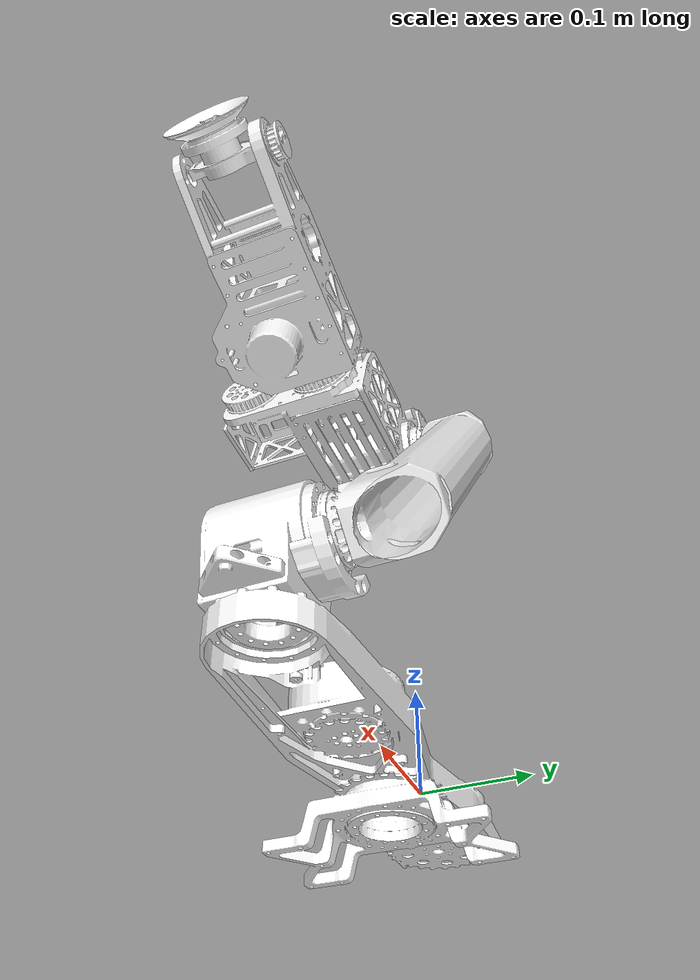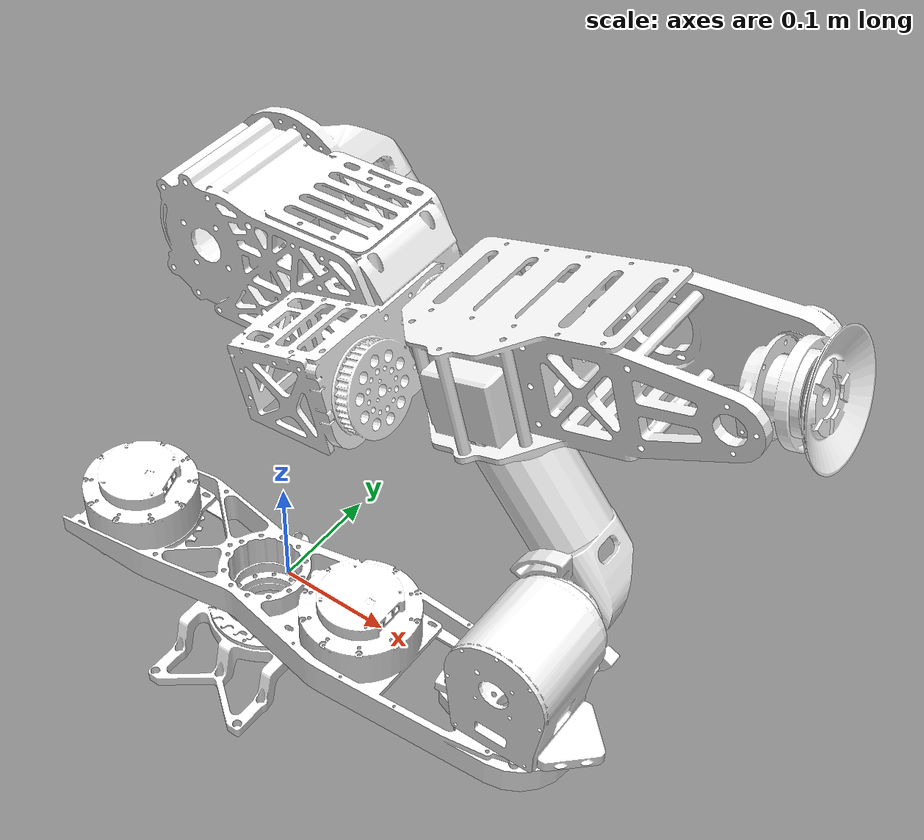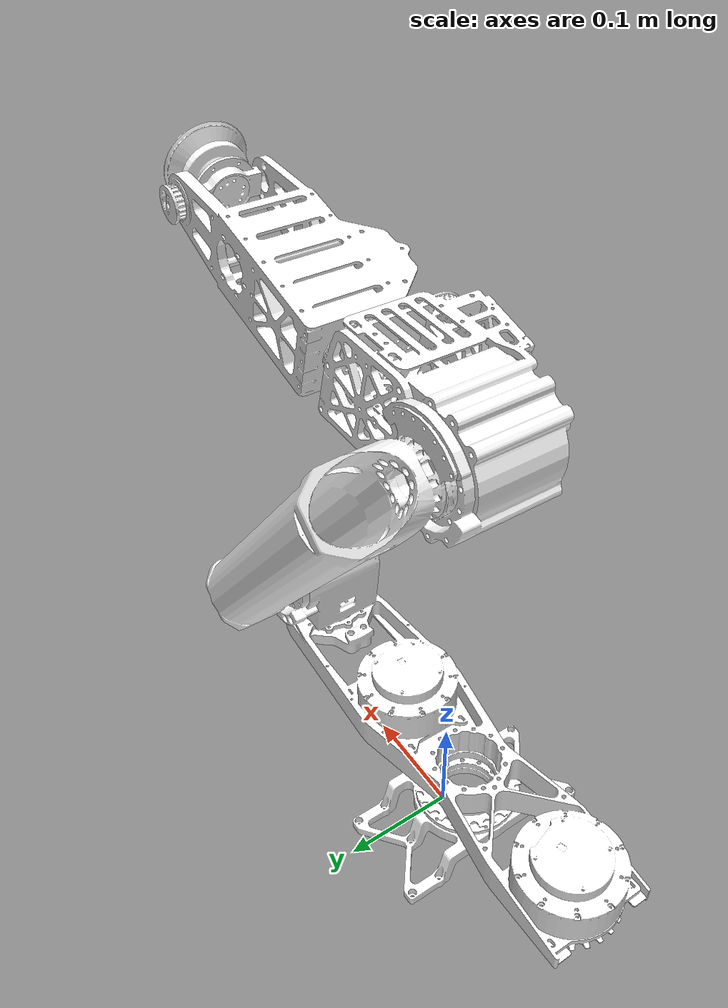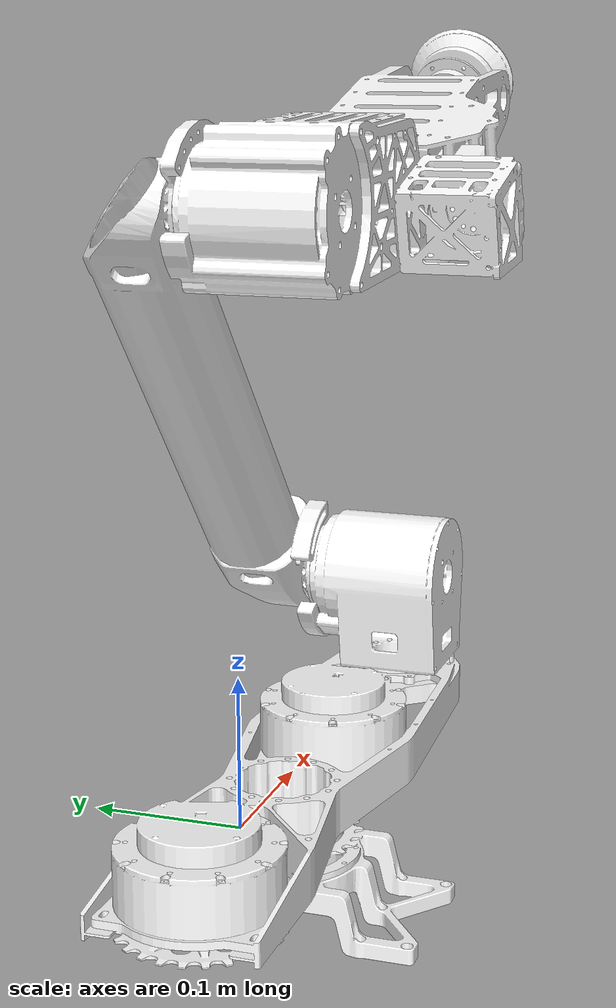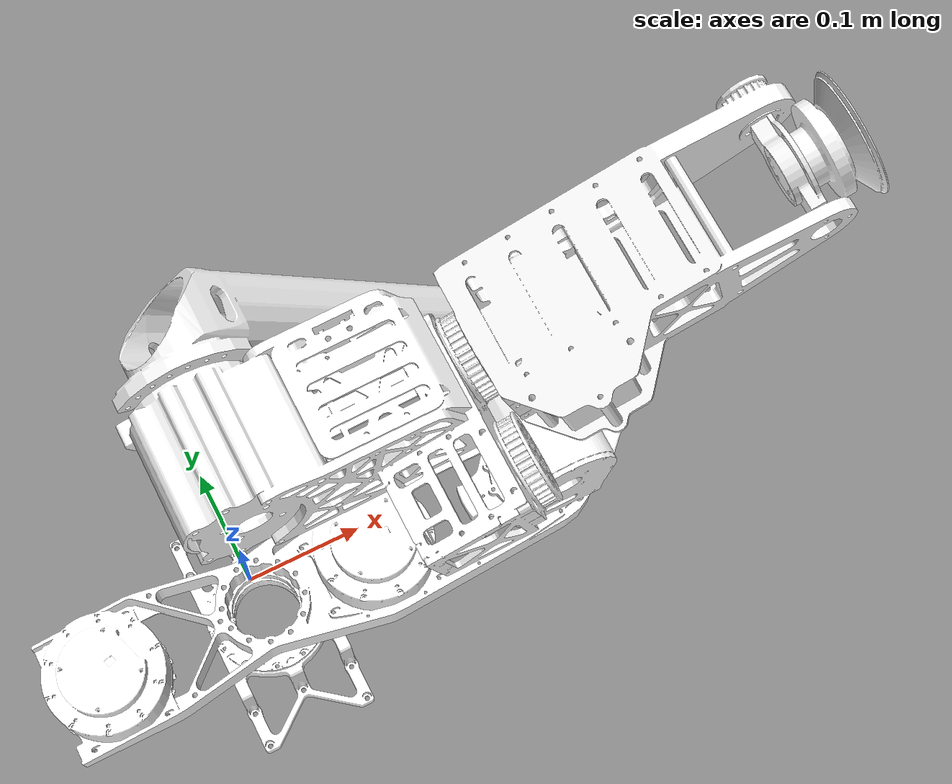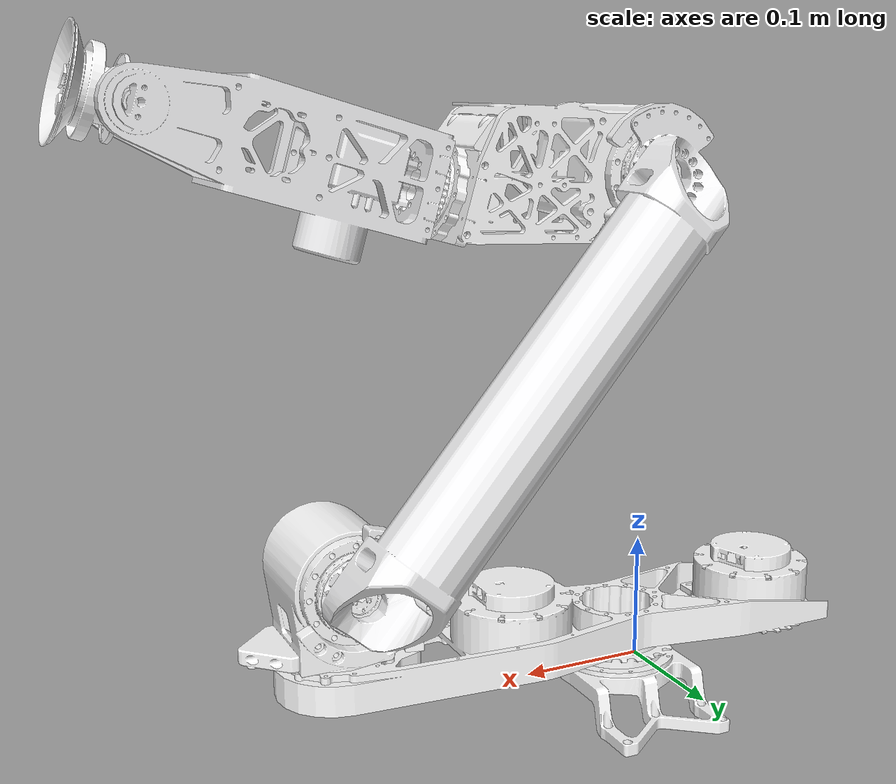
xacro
<?xml version="1.0"?>
<robot xmlns:xacro="http://www.ros.org/wiki/xacro" name="robot_arm_simulation">
    <xacro:arg name="initial_positions_file" default="initial_positions.yaml" />

    <!-- Import robot_arm_simulation urdf file -->
    <xacro:include filename="$(find robot_arm_simulation)/urdf/robot_arm_simulation.urdf" />

    <!-- Import control_xacro -->
    <xacro:include filename="robot_arm_simulation.ros2_control.xacro" />

    <xacro:robot_arm_simulation_ros2_control name="FakeSystem" initial_positions_file="$(arg initial_positions_file)"/>

</robot>

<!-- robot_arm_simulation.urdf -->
<robot
  name="robot_arm_simulation">
  <link
    name="base_link">
    <inertial>
      <origin
        xyz="0.00106636629393505 -0.0293070547501314 -0.0202271384386062"
        rpy="0 0 0" />
      <mass
        value="1" />
      <inertia
        ixx="0.003"
        ixy="0"
        ixz="0"
        iyy="0.004"
        iyz="-0.001"
        izz="0.002" />
    </inertial>
    <visual>
      <origin
        xyz="0 0 0"
        rpy="0 0 0" />
      <geometry>
        <mesh
          filename="package://robot_arm_simulation/meshes/base_link.STL" />
      </geometry>
      <material
        name="">
        <color
          rgba="1 1 1 1" />
      </material>
    </visual>
    <collision>
      <origin
        xyz="0 0 0"
        rpy="0 0 0" />
      <geometry>
        <mesh
          filename="package://robot_arm_simulation/meshes/base_link.STL" />
      </geometry>
    </collision>
  </link>
  <link
    name="link0">
    <inertial>
      <origin
        xyz="0.0111890887322725 7.95670400899548E-05 0.0214102523586093"
        rpy="0 0 0" />
      <mass
        value="3.3" />
      <inertia
        ixx="0.024"
        ixy="0.003"
        ixz="0.004"
        iyy="0.15"
        iyz="0.007"
        izz="0.144" />
    </inertial>
    <visual>
      <origin
        xyz="0 0 0"
        rpy="0 0 0" />
      <geometry>
        <mesh
          filename="package://robot_arm_simulation/meshes/link0.STL" />
      </geometry>
      <material
        name="">
        <color
          rgba="1 1 1 1" />
      </material>
    </visual>
    <collision>
      <origin
        xyz="0 0 0"
        rpy="0 0 0" />
      <geometry>
        <mesh
          filename="package://robot_arm_simulation/meshes/link0.STL" />
      </geometry>
    </collision>
  </link>
  <joint
    name="joint0"
    type="revolute">
    <origin
      xyz="0.00106821443596945 -0.0292999484608107 0.00800400717471925"
      rpy="0 0 0" />
    <parent
      link="base_link" />
    <child
      link="link0" />
    <axis
      xyz="0 0 -1" />
    <limit
      lower="-3.14"
      upper="3.14"
      effort="0"
      velocity="0" />
  </joint>
  <link
    name="link1">
    <inertial>
      <origin
        xyz="0.00281617747478818 0.0187461142617349 0.0803848783888099"
        rpy="0 0 0" />
      <mass
        value="2.2" />
      <inertia
        ixx="0.004"
        ixy="0.00"
        ixz="0.00"
        iyy="0.146"
        iyz="0.00"
        izz="0.163" />
    </inertial>
    <visual>
      <origin
        xyz="0 0 0"
        rpy="0 0 0" />
      <geometry>
        <mesh
          filename="package://robot_arm_simulation/meshes/link1.STL" />
      </geometry>
      <material
        name="">
        <color
          rgba="1 1 1 1" />
      </material>
    </visual>
    <collision>
      <origin
        xyz="0 0 0"
        rpy="0 0 0" />
      <geometry>
        <mesh
          filename="package://robot_arm_simulation/meshes/link1.STL" />
      </geometry>
    </collision>
  </link>
  <joint
    name="joint1"
    type="revolute">
    <origin
      xyz="0.25 0 -0.00150000000000016"
      rpy="0 0 0" />
    <parent
      link="link0" />
    <child
      link="link1" />
    <axis
      xyz="0 0 -1" />
    <limit
      lower="-2.5730"
      upper="2.5730"
      effort="0"
      velocity="0" />
  </joint>
  <link
    name="link2">
    <inertial>
      <origin
        xyz="0.190000000000004 -3.88578058618805E-16 0.00570000000000492"
        rpy="0 0 0" />
      <mass
        value="0.85" />
      <inertia
        ixx="0.043"
        ixy="0.002"
        ixz="-0.003"
        iyy="0.031"
        iyz="-0.006"
        izz="0.072" />
    </inertial>
    <visual>
      <origin
        xyz="0 0 0"
        rpy="0 0 0" />
      <geometry>
        <mesh
          filename="package://robot_arm_simulation/meshes/link2.STL" />
      </geometry>
      <material
        name="">
        <color
          rgba="0.956862745098039 0.956862745098039 0.96078431372549 1" />
      </material>
    </visual>
    <collision>
      <origin
        xyz="0 0 0"
        rpy="0 0 0" />
      <geometry>
        <mesh
          filename="package://robot_arm_simulation/meshes/link2.STL" />
      </geometry>
    </collision>
  </link>
  <joint
    name="joint2"
    type="revolute">
    <origin
      xyz="0 0.0612999999999991 0.0969999999999984"
      rpy="1.5707963267949 -0.870669676164259 3.14159265358979" />
    <parent
      link="link1" />
    <child
      link="link2" />
    <axis
      xyz="0 0 -1" />
    <limit
      lower="-2.0933"
      upper="0.7762"
      effort="0"
      velocity="0" />
  </joint>
  <link
    name="link3">
    <inertial>
      <origin
        xyz="0.062006399403465 -0.00325003674916025 0.0632250133882652"
        rpy="0 0 0" />
      <mass
        value="3" />
      <inertia
        ixx="0.241"
        ixy="-0.02"
        ixz="0.002"
        iyy="0.024"
        iyz="0.026"
        izz="0.246" />
    </inertial>
    <visual>
      <origin
        xyz="0 0 0"
        rpy="0 0 0" />
      <geometry>
        <mesh
          filename="package://robot_arm_simulation/meshes/link3.STL" />
      </geometry>
      <material
        name="">
        <color
          rgba="1 1 1 1" />
      </material>
    </visual>
    <collision>
      <origin
        xyz="0 0 0"
        rpy="0 0 0" />
      <geometry>
        <mesh
          filename="package://robot_arm_simulation/meshes/link3.STL" />
      </geometry>
    </collision>
  </link>
  <joint
    name="joint3"
    type="revolute">
    <origin
      xyz="0.380000000000003 0 -0.000800000000014886"
      rpy="-3.14159265358979 0 2.27092297742553" />
    <parent
      link="link2" />
    <child
      link="link3" />
    <axis
      xyz="0 0 1" />
    <limit
      lower="-0.7762"
      upper="1.0921"
      effort="0"
      velocity="0" />
  </joint>
  <link
    name="link4">
    <inertial>
      <origin
        xyz="-1.06914163189309E-07 -0.0450249174201101 0.217000395801011"
        rpy="0 0 0" />
      <mass
        value="1.7" />
      <inertia
        ixx="0.1"
        ixy="0.124"
        ixz="-0.007"
        iyy="0.155"
        iyz="-0.006"
        izz="0.254" />
    </inertial>
    <visual>
      <origin
        xyz="0 0 0"
        rpy="0 0 0" />
      <geometry>
        <mesh
          filename="package://robot_arm_simulation/meshes/link4.STL" />
      </geometry>
      <material
        name="">
        <color
          rgba="0.956862745098039 0.956862745098039 0.96078431372549 1" />
      </material>
    </visual>
    <collision>
      <origin
        xyz="0 0 0"
        rpy="0 0 0" />
      <geometry>
        <mesh
          filename="package://robot_arm_simulation/meshes/link4.STL" />
      </geometry>
    </collision>
  </link>
  <joint
    name="joint4"
    type="revolute">
    <origin
      xyz="0.170925093942183 -0.00673187074768322 0.0605000000000014"
      rpy="1.57079632679489 0 1.85877565337396" />
    <parent
      link="link3" />
    <child
      link="link4" />
    <axis
      xyz="0 0 1" />
    <limit
      lower="-3.14"
      upper="3.14"
      effort="0"
      velocity="0" />
  </joint>
  <link
    name="link5">
    <inertial>
      <origin
        xyz="0.00116772554274452 1.35911570886549E-09 0.00192542639535063"
        rpy="0 0 0" />
      <mass
        value="0.1" />
      <inertia
        ixx="0.006"
        ixy="0.007"
        ixz="0.001"
        iyy="0.009"
        iyz="0.001"
        izz="0.015" />
    </inertial>
    <visual>
      <origin
        xyz="0 0 0"
        rpy="0 0 0" />
      <geometry>
        <mesh
          filename="package://robot_arm_simulation/meshes/link5.STL" />
      </geometry>
      <material
        name="">
        <color
          rgba="0.956862745098039 0.956862745098039 0.96078431372549 1" />
      </material>
    </visual>
    <collision>
      <origin
        xyz="0 0 0"
        rpy="0 0 0" />
      <geometry>
        <mesh
          filename="package://robot_arm_simulation/meshes/link5.STL" />
      </geometry>
    </collision>
  </link>
  <joint
    name="joint5"
    type="revolute">
    <origin
      xyz="0 -0.00100000000001002 0.216999999999999"
      rpy="1.5707963267949 -1.5707963267949 0" />
    <parent
      link="link4" />
    <child
      link="link5" />
    <axis
      xyz="0 0 -1" />
    <limit
      lower="-1.57"
      upper="1.57"
      effort="0"
      velocity="0" />
  </joint>
  <link
    name="link6">
    <inertial>
      <origin
        xyz="-4.4203297064338E-09 7.20313475532919E-10 0.022185925556943"
        rpy="0 0 0" />
      <mass
        value="0.2" />
      <inertia
        ixx="0.012"
        ixy="0.00"
        ixz="0.00"
        iyy="0.021"
        iyz="0.00"
        izz="0.033" />
    </inertial>
    <visual>
      <origin
        xyz="0 0 0"
        rpy="0 0 0" />
      <geometry>
        <mesh
          filename="package://robot_arm_simulation/meshes/link6.STL" />
      </geometry>
      <material
        name="">
        <color
          rgba="1 1 1 1" />
      </material>
    </visual>
    <collision>
      <origin
        xyz="0 0 0"
        rpy="0 0 0" />
      <geometry>
        <mesh
          filename="package://robot_arm_simulation/meshes/link6.STL" />
      </geometry>
    </collision>
  </link>
  <joint
    name="joint6"
    type="revolute">
    <origin
      xyz="0 0 0"
      rpy="3.14159265358979 -1.5707963267949 0" />
    <parent
      link="link5" />
    <child
      link="link6" />
    <axis
      xyz="0 0 -1" />
    <limit
      lower="-3.14"
      upper="3.14"
      effort="0"
      velocity="0" />
  </joint>
</robot>
